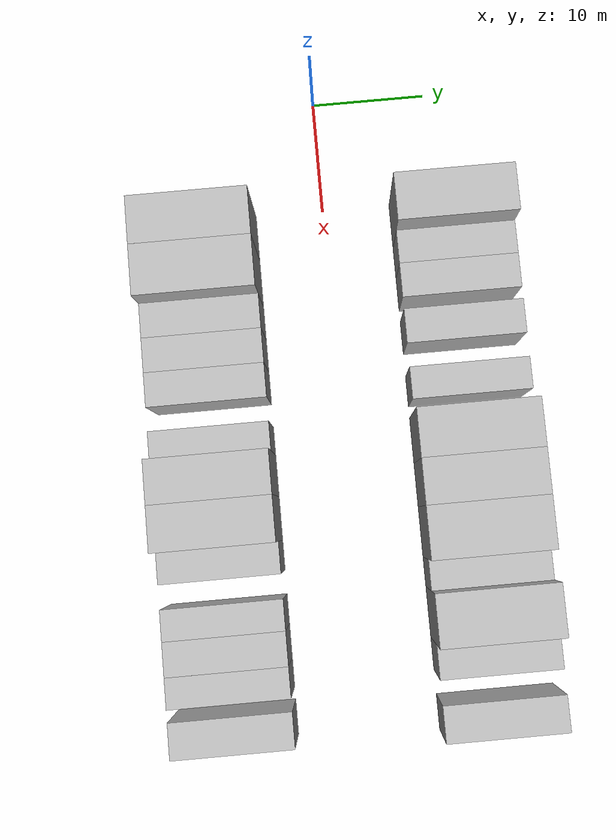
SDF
<sdf version="1.6">
 <world name="default">
  <model name="building_1">
   <static>1</static>
   <pose>11.9980 11.0000 0 0.000000 0.000000 1.570796</pose>
   <link name="link">
    <pose>0 0 4.50 0 0 0</pose>
    <collision name="collision"><geometry><box><size>10.0000 3.9959 9.0000</size></box></geometry></collision>
    <visual name="visual">
     <cast_shadows>0</cast_shadows>
     <geometry><box><size>10.0000 3.9959 9.0000</size></box></geometry>
     <material>
      <script>
       <uri>model://HANNAS_wall/materials/scripts</uri>
       <uri>model://HANNAS_wall/materials/textures</uri>
       <name>vrc/HANNAS_wall</name>
      </script>
     </material>
    </visual>
   </link>
  </model>
  <model name="building_2">
   <static>1</static>
   <pose>15.4072 11.0000 0 0.000000 0.000000 1.570796</pose>
   <link name="link">
    <pose>0 0 3.00 0 0 0</pose>
    <collision name="collision"><geometry><box><size>10.0000 2.8226 6.0000</size></box></geometry></collision>
    <visual name="visual">
     <cast_shadows>0</cast_shadows>
     <geometry><box><size>10.0000 2.8226 6.0000</size></box></geometry>
     <material>
      <script>
       <uri>model://HANNAS_wall/materials/scripts</uri>
       <uri>model://HANNAS_wall/materials/textures</uri>
       <name>vrc/HANNAS_wall</name>
      </script>
     </material>
    </visual>
   </link>
  </model>
  <model name="building_3">
   <static>1</static>
   <pose>18.2727 11.0000 0 0.000000 0.000000 1.570796</pose>
   <link name="link">
    <pose>0 0 3.00 0 0 0</pose>
    <collision name="collision"><geometry><box><size>10.0000 2.9083 6.0000</size></box></geometry></collision>
    <visual name="visual">
     <cast_shadows>0</cast_shadows>
     <geometry><box><size>10.0000 2.9083 6.0000</size></box></geometry>
     <material>
      <script>
       <uri>model://HANNAS_wall/materials/scripts</uri>
       <uri>model://HANNAS_wall/materials/textures</uri>
       <name>vrc/HANNAS_wall</name>
      </script>
     </material>
    </visual>
   </link>
  </model>
  <model name="building_4">
   <static>1</static>
   <pose>22.1791 11.0000 0 0.000000 0.000000 1.570796</pose>
   <link name="link">
    <pose>0 0 3.00 0 0 0</pose>
    <collision name="collision"><geometry><box><size>10.0000 2.9046 6.0000</size></box></geometry></collision>
    <visual name="visual">
     <cast_shadows>0</cast_shadows>
     <geometry><box><size>10.0000 2.9046 6.0000</size></box></geometry>
     <material>
      <script>
       <uri>model://HANNAS_wall/materials/scripts</uri>
       <uri>model://HANNAS_wall/materials/textures</uri>
       <name>vrc/HANNAS_wall</name>
      </script>
     </material>
    </visual>
   </link>
  </model>
  <model name="building_5">
   <static>1</static>
   <pose>26.9787 11.0000 0 0.000000 0.000000 1.570796</pose>
   <link name="link">
    <pose>0 0 3.00 0 0 0</pose>
    <collision name="collision"><geometry><box><size>10.0000 2.6946 6.0000</size></box></geometry></collision>
    <visual name="visual">
     <cast_shadows>0</cast_shadows>
     <geometry><box><size>10.0000 2.6946 6.0000</size></box></geometry>
     <material>
      <script>
       <uri>model://HANNAS_wall/materials/scripts</uri>
       <uri>model://HANNAS_wall/materials/textures</uri>
       <name>vrc/HANNAS_wall</name>
      </script>
     </material>
    </visual>
   </link>
  </model>
  <model name="building_6">
   <static>1</static>
   <pose>31.3501 11.0000 0 0.000000 0.000000 1.570796</pose>
   <link name="link">
    <pose>0 0 4.50 0 0 0</pose>
    <collision name="collision"><geometry><box><size>10.0000 4.0482 9.0000</size></box></geometry></collision>
    <visual name="visual">
     <cast_shadows>0</cast_shadows>
     <geometry><box><size>10.0000 4.0482 9.0000</size></box></geometry>
     <material>
      <script>
       <uri>model://HANNAS_wall/materials/scripts</uri>
       <uri>model://HANNAS_wall/materials/textures</uri>
       <name>vrc/HANNAS_wall</name>
      </script>
     </material>
    </visual>
   </link>
  </model>
  <model name="building_7">
   <static>1</static>
   <pose>35.2538 11.0000 0 0.000000 0.000000 1.570796</pose>
   <link name="link">
    <pose>0 0 4.50 0 0 0</pose>
    <collision name="collision"><geometry><box><size>10.0000 3.7592 9.0000</size></box></geometry></collision>
    <visual name="visual">
     <cast_shadows>0</cast_shadows>
     <geometry><box><size>10.0000 3.7592 9.0000</size></box></geometry>
     <material>
      <script>
       <uri>model://HANNAS_wall/materials/scripts</uri>
       <uri>model://HANNAS_wall/materials/textures</uri>
       <name>vrc/HANNAS_wall</name>
      </script>
     </material>
    </visual>
   </link>
  </model>
  <model name="building_8">
   <static>1</static>
   <pose>39.3070 11.0000 0 0.000000 0.000000 1.570796</pose>
   <link name="link">
    <pose>0 0 4.50 0 0 0</pose>
    <collision name="collision"><geometry><box><size>10.0000 4.3472 9.0000</size></box></geometry></collision>
    <visual name="visual">
     <cast_shadows>0</cast_shadows>
     <geometry><box><size>10.0000 4.3472 9.0000</size></box></geometry>
     <material>
      <script>
       <uri>model://HANNAS_wall/materials/scripts</uri>
       <uri>model://HANNAS_wall/materials/textures</uri>
       <name>vrc/HANNAS_wall</name>
      </script>
     </material>
    </visual>
   </link>
  </model>
  <model name="building_9">
   <static>1</static>
   <pose>42.7500 11.0000 0 0.000000 0.000000 1.570796</pose>
   <link name="link">
    <pose>0 0 3.00 0 0 0</pose>
    <collision name="collision"><geometry><box><size>10.0000 2.5387 6.0000</size></box></geometry></collision>
    <visual name="visual">
     <cast_shadows>0</cast_shadows>
     <geometry><box><size>10.0000 2.5387 6.0000</size></box></geometry>
     <material>
      <script>
       <uri>model://HANNAS_wall/materials/scripts</uri>
       <uri>model://HANNAS_wall/materials/textures</uri>
       <name>vrc/HANNAS_wall</name>
      </script>
     </material>
    </visual>
   </link>
  </model>
  <model name="building_10">
   <static>1</static>
   <pose>46.1682 11.0000 0 0.000000 0.000000 1.570796</pose>
   <link name="link">
    <pose>0 0 4.50 0 0 0</pose>
    <collision name="collision"><geometry><box><size>10.0000 4.2977 9.0000</size></box></geometry></collision>
    <visual name="visual">
     <cast_shadows>0</cast_shadows>
     <geometry><box><size>10.0000 4.2977 9.0000</size></box></geometry>
     <material>
      <script>
       <uri>model://HANNAS_wall/materials/scripts</uri>
       <uri>model://HANNAS_wall/materials/textures</uri>
       <name>vrc/HANNAS_wall</name>
      </script>
     </material>
    </visual>
   </link>
  </model>
  <model name="building_11">
   <static>1</static>
   <pose>49.7075 11.0000 0 0.000000 0.000000 1.570796</pose>
   <link name="link">
    <pose>0 0 3.00 0 0 0</pose>
    <collision name="collision"><geometry><box><size>10.0000 2.7811 6.0000</size></box></geometry></collision>
    <visual name="visual">
     <cast_shadows>0</cast_shadows>
     <geometry><box><size>10.0000 2.7811 6.0000</size></box></geometry>
     <material>
      <script>
       <uri>model://HANNAS_wall/materials/scripts</uri>
       <uri>model://HANNAS_wall/materials/textures</uri>
       <name>vrc/HANNAS_wall</name>
      </script>
     </material>
    </visual>
   </link>
  </model>
  <model name="building_12">
   <static>1</static>
   <pose>54.5889 11.0000 0 0.000000 0.000000 1.570796</pose>
   <link name="link">
    <pose>0 0 3.00 0 0 0</pose>
    <collision name="collision"><geometry><box><size>10.0000 2.9816 6.0000</size></box></geometry></collision>
    <visual name="visual">
     <cast_shadows>0</cast_shadows>
     <geometry><box><size>10.0000 2.9816 6.0000</size></box></geometry>
     <material>
      <script>
       <uri>model://HANNAS_wall/materials/scripts</uri>
       <uri>model://HANNAS_wall/materials/textures</uri>
       <name>vrc/HANNAS_wall</name>
      </script>
     </material>
    </visual>
   </link>
  </model>
  <model name="building_50">
   <static>1</static>
   <pose>12.0243 -11.0000 0 0.000000 0.000000 1.570796</pose>
   <link name="link">
    <pose>0 0 4.50 0 0 0</pose>
    <collision name="collision"><geometry><box><size>10.0000 4.0487 9.0000</size></box></geometry></collision>
    <visual name="visual">
     <cast_shadows>0</cast_shadows>
     <geometry><box><size>10.0000 4.0487 9.0000</size></box></geometry>
     <material>
      <script>
       <uri>model://HANNAS_wall/materials/scripts</uri>
       <uri>model://HANNAS_wall/materials/textures</uri>
       <name>vrc/HANNAS_wall</name>
      </script>
     </material>
    </visual>
   </link>
  </model>
  <model name="building_51">
   <static>1</static>
   <pose>16.1841 -11.0000 0 0.000000 0.000000 1.570796</pose>
   <link name="link">
    <pose>0 0 4.50 0 0 0</pose>
    <collision name="collision"><geometry><box><size>10.0000 4.2708 9.0000</size></box></geometry></collision>
    <visual name="visual">
     <cast_shadows>0</cast_shadows>
     <geometry><box><size>10.0000 4.2708 9.0000</size></box></geometry>
     <material>
      <script>
       <uri>model://HANNAS_wall/materials/scripts</uri>
       <uri>model://HANNAS_wall/materials/textures</uri>
       <name>vrc/HANNAS_wall</name>
      </script>
     </material>
    </visual>
   </link>
  </model>
  <model name="building_52">
   <static>1</static>
   <pose>19.7863 -11.0000 0 0.000000 0.000000 1.570796</pose>
   <link name="link">
    <pose>0 0 3.00 0 0 0</pose>
    <collision name="collision"><geometry><box><size>10.0000 2.9337 6.0000</size></box></geometry></collision>
    <visual name="visual">
     <cast_shadows>0</cast_shadows>
     <geometry><box><size>10.0000 2.9337 6.0000</size></box></geometry>
     <material>
      <script>
       <uri>model://HANNAS_wall/materials/scripts</uri>
       <uri>model://HANNAS_wall/materials/textures</uri>
       <name>vrc/HANNAS_wall</name>
      </script>
     </material>
    </visual>
   </link>
  </model>
  <model name="building_53">
   <static>1</static>
   <pose>22.7130 -11.0000 0 0.000000 0.000000 1.570796</pose>
   <link name="link">
    <pose>0 0 3.00 0 0 0</pose>
    <collision name="collision"><geometry><box><size>10.0000 2.9197 6.0000</size></box></geometry></collision>
    <visual name="visual">
     <cast_shadows>0</cast_shadows>
     <geometry><box><size>10.0000 2.9197 6.0000</size></box></geometry>
     <material>
      <script>
       <uri>model://HANNAS_wall/materials/scripts</uri>
       <uri>model://HANNAS_wall/materials/textures</uri>
       <name>vrc/HANNAS_wall</name>
      </script>
     </material>
    </visual>
   </link>
  </model>
  <model name="building_54">
   <static>1</static>
   <pose>25.6211 -11.0000 0 0.000000 0.000000 1.570796</pose>
   <link name="link">
    <pose>0 0 3.00 0 0 0</pose>
    <collision name="collision"><geometry><box><size>10.0000 2.8964 6.0000</size></box></geometry></collision>
    <visual name="visual">
     <cast_shadows>0</cast_shadows>
     <geometry><box><size>10.0000 2.8964 6.0000</size></box></geometry>
     <material>
      <script>
       <uri>model://HANNAS_wall/materials/scripts</uri>
       <uri>model://HANNAS_wall/materials/textures</uri>
       <name>vrc/HANNAS_wall</name>
      </script>
     </material>
    </visual>
   </link>
  </model>
  <model name="building_55">
   <static>1</static>
   <pose>30.2984 -11.0000 0 0.000000 0.000000 1.570796</pose>
   <link name="link">
    <pose>0 0 3.00 0 0 0</pose>
    <collision name="collision"><geometry><box><size>10.0000 2.4581 6.0000</size></box></geometry></collision>
    <visual name="visual">
     <cast_shadows>0</cast_shadows>
     <geometry><box><size>10.0000 2.4581 6.0000</size></box></geometry>
     <material>
      <script>
       <uri>model://HANNAS_wall/materials/scripts</uri>
       <uri>model://HANNAS_wall/materials/textures</uri>
       <name>vrc/HANNAS_wall</name>
      </script>
     </material>
    </visual>
   </link>
  </model>
  <model name="building_56">
   <static>1</static>
   <pose>33.3546 -11.0000 0 0.000000 0.000000 1.570796</pose>
   <link name="link">
    <pose>0 0 4.50 0 0 0</pose>
    <collision name="collision"><geometry><box><size>10.0000 3.6543 9.0000</size></box></geometry></collision>
    <visual name="visual">
     <cast_shadows>0</cast_shadows>
     <geometry><box><size>10.0000 3.6543 9.0000</size></box></geometry>
     <material>
      <script>
       <uri>model://HANNAS_wall/materials/scripts</uri>
       <uri>model://HANNAS_wall/materials/textures</uri>
       <name>vrc/HANNAS_wall</name>
      </script>
     </material>
    </visual>
   </link>
  </model>
  <model name="building_57">
   <static>1</static>
   <pose>37.0646 -11.0000 0 0.000000 0.000000 1.570796</pose>
   <link name="link">
    <pose>0 0 4.50 0 0 0</pose>
    <collision name="collision"><geometry><box><size>10.0000 3.7656 9.0000</size></box></geometry></collision>
    <visual name="visual">
     <cast_shadows>0</cast_shadows>
     <geometry><box><size>10.0000 3.7656 9.0000</size></box></geometry>
     <material>
      <script>
       <uri>model://HANNAS_wall/materials/scripts</uri>
       <uri>model://HANNAS_wall/materials/textures</uri>
       <name>vrc/HANNAS_wall</name>
      </script>
     </material>
    </visual>
   </link>
  </model>
  <model name="building_58">
   <static>1</static>
   <pose>40.2543 -11.0000 0 0.000000 0.000000 1.570796</pose>
   <link name="link">
    <pose>0 0 3.00 0 0 0</pose>
    <collision name="collision"><geometry><box><size>10.0000 2.6139 6.0000</size></box></geometry></collision>
    <visual name="visual">
     <cast_shadows>0</cast_shadows>
     <geometry><box><size>10.0000 2.6139 6.0000</size></box></geometry>
     <material>
      <script>
       <uri>model://HANNAS_wall/materials/scripts</uri>
       <uri>model://HANNAS_wall/materials/textures</uri>
       <name>vrc/HANNAS_wall</name>
      </script>
     </material>
    </visual>
   </link>
  </model>
  <model name="building_59">
   <static>1</static>
   <pose>44.8411 -11.0000 0 0.000000 0.000000 1.570796</pose>
   <link name="link">
    <pose>0 0 3.00 0 0 0</pose>
    <collision name="collision"><geometry><box><size>10.0000 2.5596 6.0000</size></box></geometry></collision>
    <visual name="visual">
     <cast_shadows>0</cast_shadows>
     <geometry><box><size>10.0000 2.5596 6.0000</size></box></geometry>
     <material>
      <script>
       <uri>model://HANNAS_wall/materials/scripts</uri>
       <uri>model://HANNAS_wall/materials/textures</uri>
       <name>vrc/HANNAS_wall</name>
      </script>
     </material>
    </visual>
   </link>
  </model>
  <model name="building_60">
   <static>1</static>
   <pose>47.5301 -11.0000 0 0.000000 0.000000 1.570796</pose>
   <link name="link">
    <pose>0 0 3.00 0 0 0</pose>
    <collision name="collision"><geometry><box><size>10.0000 2.8185 6.0000</size></box></geometry></collision>
    <visual name="visual">
     <cast_shadows>0</cast_shadows>
     <geometry><box><size>10.0000 2.8185 6.0000</size></box></geometry>
     <material>
      <script>
       <uri>model://HANNAS_wall/materials/scripts</uri>
       <uri>model://HANNAS_wall/materials/textures</uri>
       <name>vrc/HANNAS_wall</name>
      </script>
     </material>
    </visual>
   </link>
  </model>
  <model name="building_61">
   <static>1</static>
   <pose>50.2014 -11.0000 0 0.000000 0.000000 1.570796</pose>
   <link name="link">
    <pose>0 0 3.00 0 0 0</pose>
    <collision name="collision"><geometry><box><size>10.0000 2.5240 6.0000</size></box></geometry></collision>
    <visual name="visual">
     <cast_shadows>0</cast_shadows>
     <geometry><box><size>10.0000 2.5240 6.0000</size></box></geometry>
     <material>
      <script>
       <uri>model://HANNAS_wall/materials/scripts</uri>
       <uri>model://HANNAS_wall/materials/textures</uri>
       <name>vrc/HANNAS_wall</name>
      </script>
     </material>
    </visual>
   </link>
  </model>
  <model name="building_62">
   <static>1</static>
   <pose>53.9348 -11.0000 0 0.000000 0.000000 1.570796</pose>
   <link name="link">
    <pose>0 0 3.00 0 0 0</pose>
    <collision name="collision"><geometry><box><size>10.0000 2.9428 6.0000</size></box></geometry></collision>
    <visual name="visual">
     <cast_shadows>0</cast_shadows>
     <geometry><box><size>10.0000 2.9428 6.0000</size></box></geometry>
     <material>
      <script>
       <uri>model://HANNAS_wall/materials/scripts</uri>
       <uri>model://HANNAS_wall/materials/textures</uri>
       <name>vrc/HANNAS_wall</name>
      </script>
     </material>
    </visual>
   </link>
  </model>
 </world>
</sdf>
